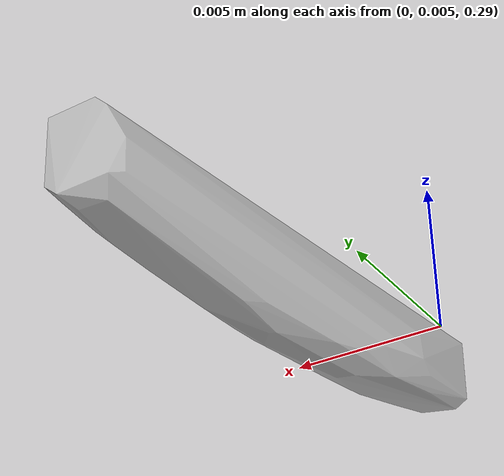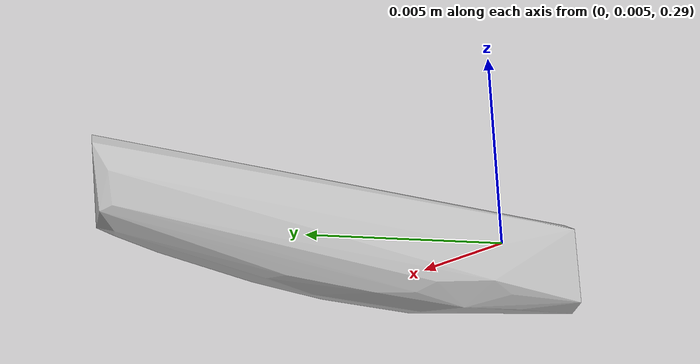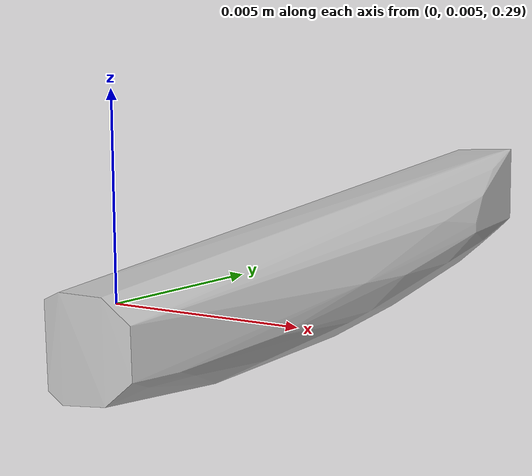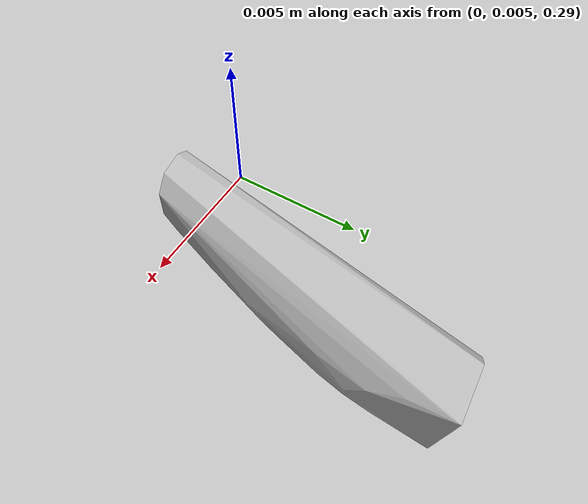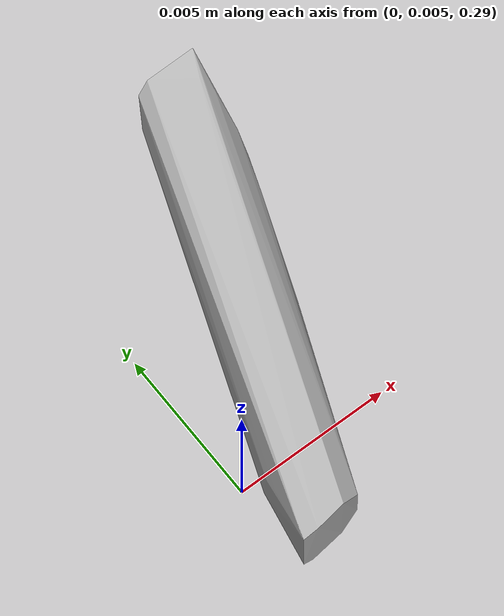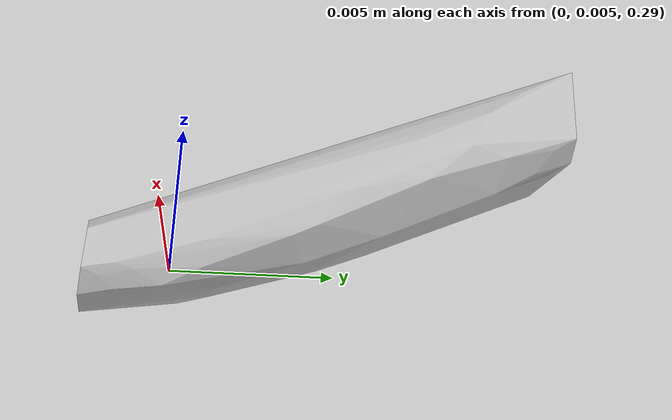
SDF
<?xml version="1.0"?>
<sdf version="1.7">
  <model name="vascular_partexport025">
    <link name="vascular_partexport025_body">
      <visual name="vascular_partexport025_visual">
        <geometry>
          <mesh>
            <uri>vascular_partexport025.obj</uri>
          </mesh>
        </geometry>
      </visual>
      <collision name="vascular_partexport025_collision">
        <geometry>
          <mesh>
            <uri>vascular_partexport025.obj</uri>
          </mesh>
        </geometry>
      </collision>
    </link>
    <frame name="vascular_partexport025_center">
      <pose relative_to="vascular_partexport025_body">0 0 0 0 0 0</pose>
    </frame>
  </model>
</sdf>
